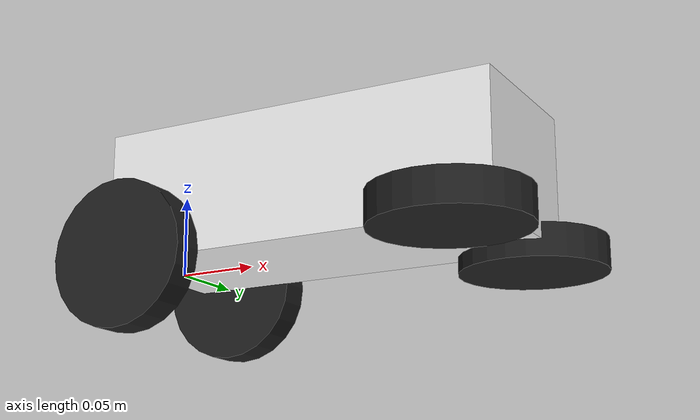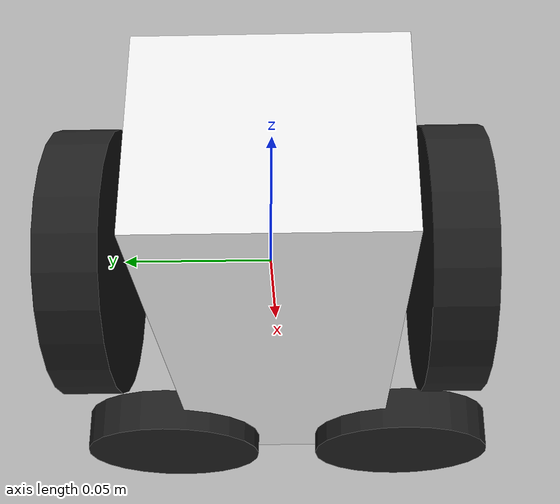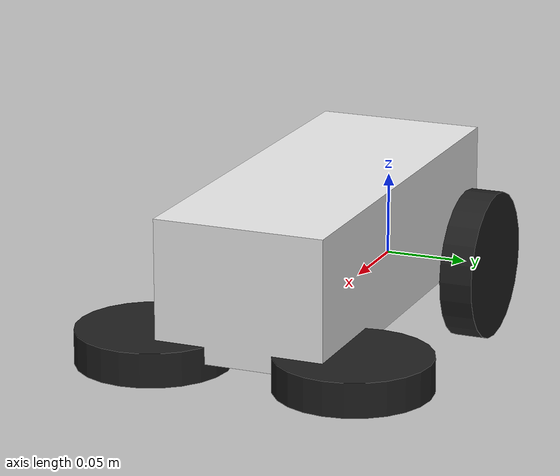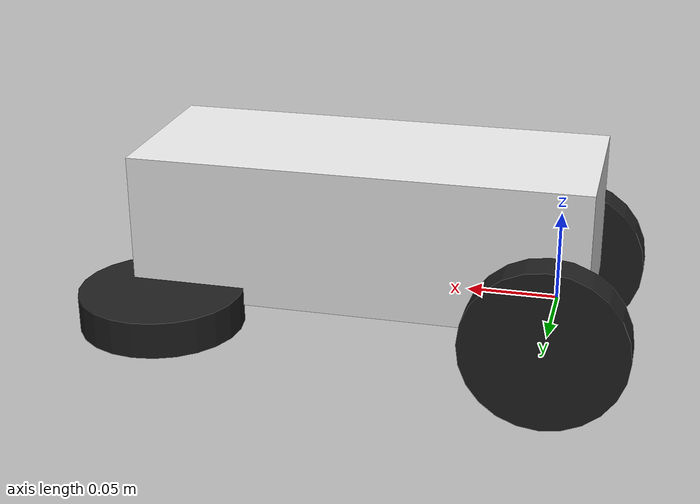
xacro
<robot xmlns:xacro="http://www.ros.org/wiki/xacro" name="robot">

    <!-- Define materials -->
    <!-- ... (same as before) ... -->

    <link name="base_link"></link>

    <joint name="chassis_joint" type="fixed">
        <parent link="base_link"/>
        <child link="chassis"/>
        <origin xyz="-0.02 0 0"/>
    </joint>

    <link name="chassis">
        <visual>
            <origin xyz='0.125 0 0.04'/>
            <geometry>
                <box size="0.25 0.10 0.08"/>
            </geometry>
            <material name="white"/>
        </visual>
        <inertial>
            <origin xyz="0.125 0 0.04" rpy="0 0 0"/>
            <mass value="0.3"/>
            <inertia ixx="0.000104166667" ixy="0.0" ixz="0.0" iyy="0.0003125" iyz="0.0" izz="0.000260416667"/>
        </inertial>
    </link>

    <joint name="left_frontwheel_joint" type="revolute">
        <parent link="chassis"/>
        <child link="left_frontwheel"/>
        <origin xyz="0.23 0.06 0" rpy="0 0 0"/>
        <axis xyz="0 0 1"/>
        <limit effort="100" velocity="1.0" lower="-0.785" upper="0.785"/>
    </joint>

    <link name="left_frontwheel">
        <visual>
            <geometry>
                <cylinder radius="0.045" length="0.02"/>
            </geometry>
            <material name="black"/>
        </visual>
        <collision>
            <geometry>
                <cylinder radius="0.045" length="0.02"/>
            </geometry>
            <material name="black"/>
        </collision>
        <inertial>
            <origin xyz="0 0 0" rpy="0 0 0"/>
            <mass value="0.03"/>
            <inertia ixx="5.625e-06" ixy="0.0" ixz="0.0" iyy="1.25e-05" iyz="0.0" izz="1.25e-05"/>
        </inertial>
    </link>

    <joint name="right_frontwheel_joint" type="revolute">
        <parent link="chassis"/>
        <child link="right_frontwheel"/>
        <origin xyz="0.23 -0.06 0" rpy="0 0 0"/>
        <axis xyz="0 0 -1"/>
        <limit effort="100" velocity="1.0" lower="-0.785" upper="0.785"/>
    </joint>

    <link name="right_frontwheel">
        <visual>
            <geometry>
                <cylinder radius="0.045" length="0.02"/>
            </geometry>
            <material name="black"/>
        </visual>
        <collision>
            <geometry>
                <cylinder radius="0.045" length="0.02"/>
            </geometry>
            <material name="black"/>
        </collision>
        <inertial>
            <origin xyz="0 0 0" rpy="0 0 0"/>
            <mass value="0.03"/>
            <inertia ixx="5.625e-06" ixy="0.0" ixz="0.0" iyy="1.25e-05" iyz="0.0" izz="1.25e-05"/>
        </inertial>
    </link>

    <joint name="left_backwheel_joint" type="continuous">
        <parent link="base_link"/>
        <child link="left_backwheel"/>
        <origin xyz="0 0.06 0" rpy="-${pi/2} 0 0"/>
        <axis xyz="0 0 1"/>
    </joint>

    <link name="left_backwheel">
        <visual>
            <geometry>
                <cylinder radius="0.045" length="0.02"/>
            </geometry>
            <material name="black"/>
        </visual>
        <collision>
            <geometry>
                <cylinder radius="0.045" length="0.02"/>
            </geometry>
            <material name="black"/>
        </collision>
        <inertial>
            <origin xyz="0 0 0" rpy="0 0 0"/>
            <mass value="0.03"/>
            <inertia ixx="5.625e-06" ixy="0.0" ixz="0.0" iyy="1.25e-05" iyz="0.0" izz="1.25e-05"/>
        </inertial>
    </link>

    <joint name="right_backwheel_joint" type="continuous">
        <parent link="base_link"/>
        <child link="right_backwheel"/>
        <origin xyz="0 -0.06 0" rpy="${pi/2} 0 0"/>
        <axis xyz="0 0 -1"/>
    </joint>

    <link name="right_backwheel">
        <visual>
            <geometry>
                <cylinder radius="0.045" length="0.02"/>
            </geometry>
            <material name="black"/>
        </visual>
        <collision>
            <geometry>
                <cylinder radius="0.045" length="0.02"/>
            </geometry>
            <material name="black"/>
        </collision>
        <inertial>
            <origin xyz="0 0 0" rpy="0 0 0"/>
            <mass value="0.03"/>
            <inertia ixx="5.625e-06" ixy="0.0" ixz="0.0" iyy="1.25e-05" iyz="0.0" izz="1.25e-05"/>
        </inertial>
    </link>
</robot>
